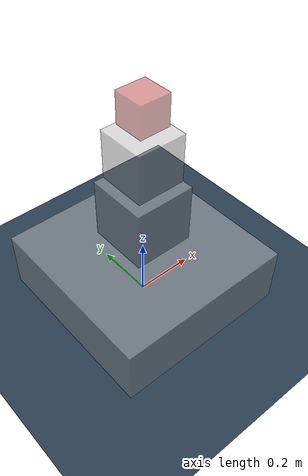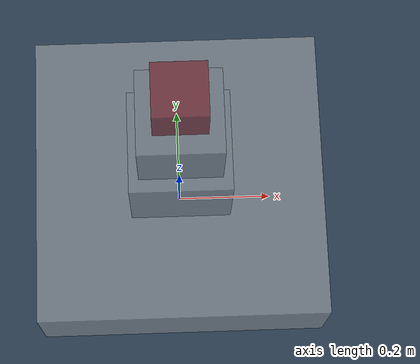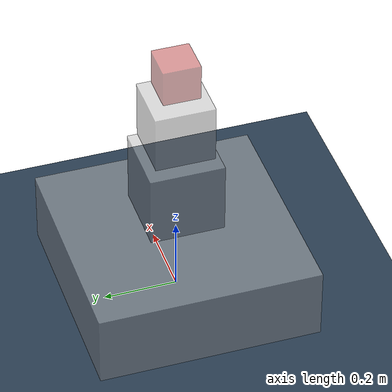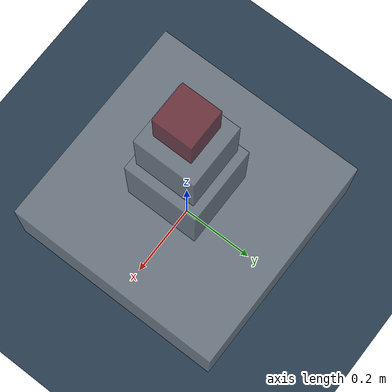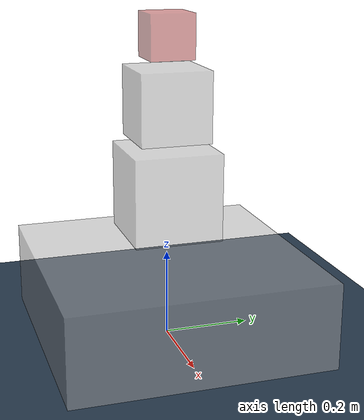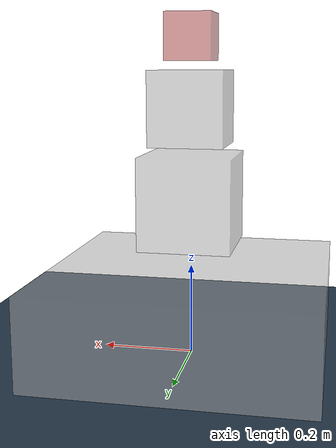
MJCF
<mujoco model="box_on_box">
  <compiler meshdir="asset" texturedir="asset"/>
  <option timestep="0.001" jacobian="dense" gravity="0 0 -9.81" cone="elliptic"/>
  <visual>
    <rgba haze="0.15 0.25 0.35 1"/>
    <quality shadowsize="4096"/>
    <map stiffness="700" shadowscale="0.5" fogstart="10" fogend="15" zfar="40" haze="0.3"/>
    <scale forcewidth="0.001" />
  </visual>

  <asset>
    <texture type="skybox" builtin="gradient" rgb1="0.3 0.5 0.7" rgb2="0 0 0" width="512" height="512"/>
    <texture name="texplane" type="2d" builtin="checker" rgb1=".2 .3 .4" rgb2=".1 0.15 0.2"
      width="512" height="512" mark="cross" markrgb=".8 .8 .8"/>
    <material name="matplane" reflectance="0.3" texture="texplane" texrepeat="1 1" texuniform="true"/>
  </asset>

  <custom>
    <!-- All custom parameters related to contact surfaces have the prefix cs:: -->
    <text name="cs::HydroelasticContactRepresentation" data="kPolygon"/>
    <numeric name="cs::VisualizeSurfaces" data="1"/>
    <numeric name="cs::box1" data="0 1.0 0.1 0.3 0.3"/>
    <numeric name="cs::box0" data="3e4 3.0 0 0.3 0.3"/>
  </custom>

  <worldbody>
    <light directional="true" diffuse=".4 .4 .4" specular="0.1 0.1 0.1" pos="0 0 5.0" dir="0 0 -1" castshadow="false"/>
    <light directional="true" diffuse=".6 .6 .6" specular="0.2 0.2 0.2" pos="0 0 4" dir="0 0 -1"/>
    <geom name="ground" type="plane" size="0 0 1" pos="0 0 0" quat="1 0 0 0" material="matplane"/>
  <body name="body_box2" pos="0 0 0.7">
    <freejoint/>
  <geom name="box2" type="box"  size="0.05 0.05 0.05" rgba="0.7 0.2 0.2 0.5"/>
</body>
    <body name="body_box1" pos="0 0 0.35">
        <freejoint/>
      <geom name="box1" type="box"  size="0.1 0.1 0.1" rgba="0.7 0.7 0.7 0.5"/>
    </body>
    <body name="body_box3" pos="0 0 0.1">
      <freejoint/>
    <geom name="box3" type="box"  size="0.3 0.3 0.1" rgba="0.7 0.7 0.7 0.5"/>
  </body>
    <body name="body_box0" pos="0 0.0 0.55" >
      <freejoint/>
      <geom name="box0" type="box" size="0.08 0.08 0.08" rgba="0.7 0.7 0.7 0.5"/>
    </body>
  </worldbody>
</mujoco>
